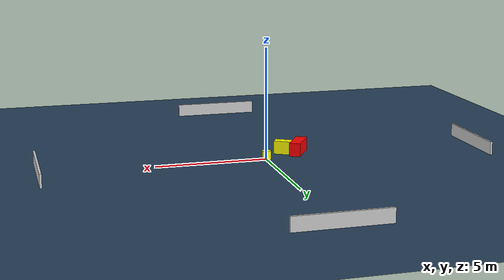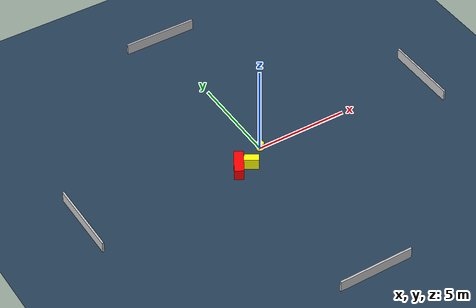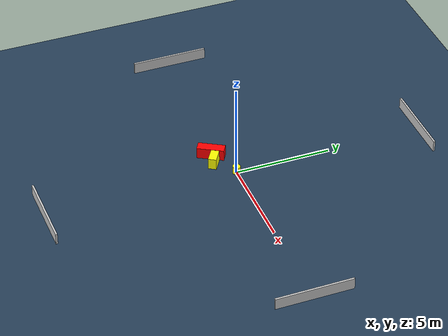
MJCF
<?xml version="1.0" ?>
<mujoco model="generated_environment">
  <option timestep="0.01" integrator="RK4" cone="elliptic"/>
  <default>
    <geom density="1"/>
  </default>
  <asset>
    <texture builtin="gradient" height="3072" name="skybox" rgb1="0.3 0.5 0.7" rgb2="0 0 0" type="skybox" width="512"/>
    <texture builtin="checker" height="300" name="groundplane" rgb1="0.2 0.3 0.4" rgb2="0.1 0.2 0.3" type="2d" width="300"/>
    <material name="groundplane" reflectance="0.2" texrepeat="5 5" texture="groundplane"/>
  </asset>
  <worldbody>
    <light dir="0 0 -1" directional="true" pos="0 0 1.5"/>
    <geom condim="3" friction="0.5 0.005 0.001" material="groundplane" name="floor" pos="0 0 0" size="0 0 0.05" type="plane"/>
    <body name="walls">
      <geom name="wall_1" condim="4" pos="-10.0 0.0 0.3" rgba="0.800000011920929 0.800000011920929 0.800000011920929 1.0" size="0.05 2.0 0.3" type="box"/>
      <geom name="wall_2" condim="4" pos="10.0 0.0 0.3" rgba="0.800000011920929 0.800000011920929 0.800000011920929 1.0" size="0.05 2.0 0.3" type="box"/>
      <geom name="wall_3" condim="4" pos="0.0 -10.0 0.3" rgba="0.800000011920929 0.800000011920929 0.800000011920929 1.0" size="2.0 0.05 0.3" type="box"/>
      <geom name="wall_4" condim="4" pos="0.0 10.0 0.3" rgba="0.800000011920929 0.800000011920929 0.800000011920929 1.0" size="2.0 0.05 0.3" type="box"/>
    </body>
    <body name="robot">
      <joint name="joint_x" type="slide" pos="0 0 0" axis="1 0 0"/>
      <joint name="joint_y" type="slide" pos="0 0 0" axis="0 1 0"/>
      <geom name="robot" type="cylinder" pos="0.0 0.0 0.2" size="0.2 0.2 0.0" mass="5.0" friction="1.0 0.005 0.0001" condim="4" rgba="1.0 1.0 0.0 1.0"/>
    </body>
    <body name="obstacle_1_movable">
      <geom name="obstacle_1_movable" condim="4" pos="-1.0248719057631086 -0.8330225044869088 0.3" euler="0 0 57.605895271116566" friction="0.0 0.005 0.001" rgba="1.0 1.0 0.0 1.0" size="0.21250802082594353 0.3819770003860993 0.3" type="box" mass="0.1"/>
      <joint type="free"/>
    </body>
    <body name="obstacle_2_static">
      <geom name="obstacle_2_static" condim="4" pos="-1.7011591072632082 -0.7203896705950193 0.3" euler="0 0 149.47664715555163" friction="0.0 0.005 0.001" rgba="1.0 0.0 0.0 1.0" size="0.24879255409722295 0.7003696933341212 0.3" type="box"/>
    </body>
  </worldbody>
  <actuator>
    <motor name="actuator_x" joint="joint_x" gear="1" ctrlrange="-1 1"/>
    <motor name="actuator_y" joint="joint_y" gear="1" ctrlrange="-1 1"/>
  </actuator>
</mujoco>
